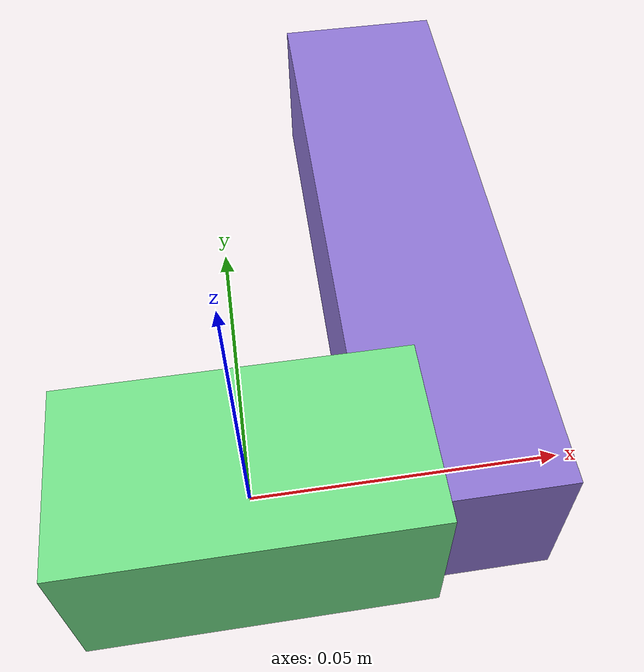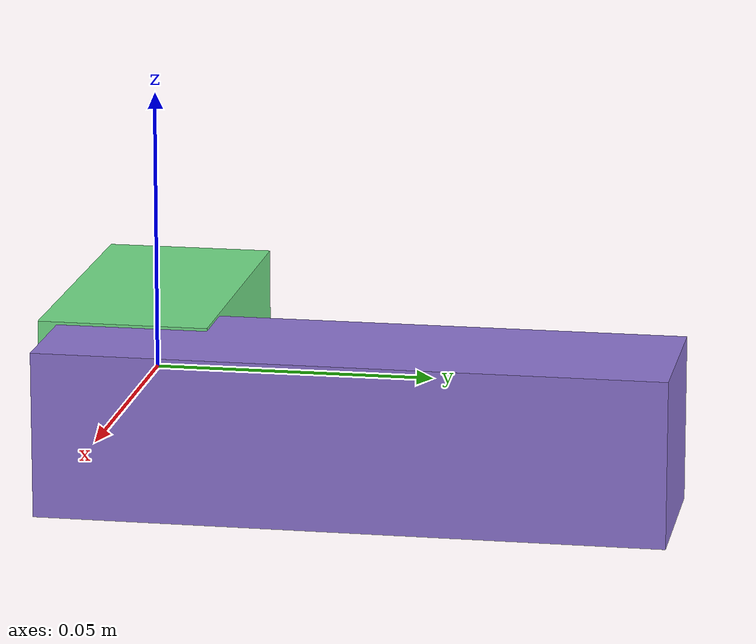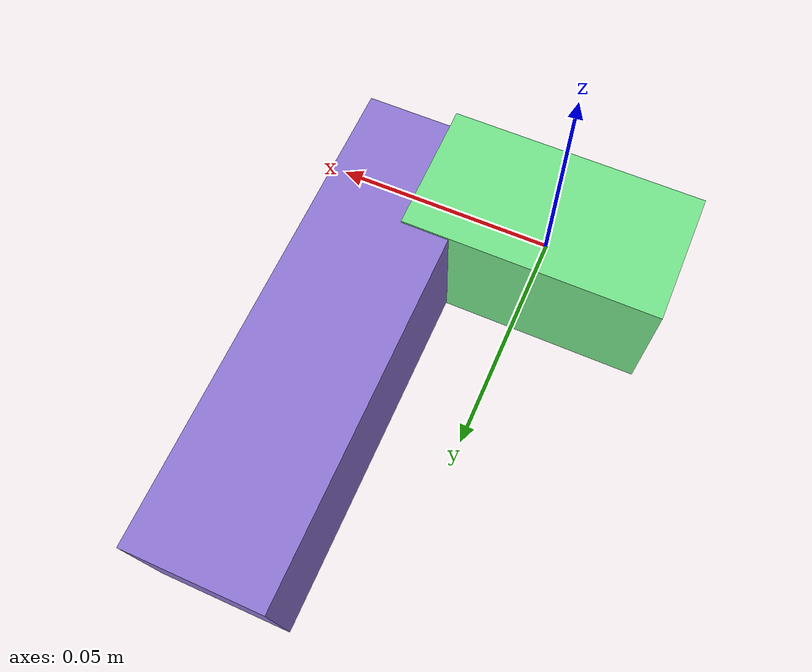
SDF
<sdf version="1.4"><world name="default"><model name="object0"><link name="link1"><pose>0 0 0 0 0 0</pose><inertial><pose>0 0 0 0 0 0</pose><mass>0.030814669496368262</mass><inertia><ixx>4.622200424455239e-06</ixx><ixy>0</ixy><iyy>1.0672977241319466e-05</iyy><ixz>0</ixz><iyz>0</iyz><izz>1.0672977241319466e-05</izz></inertia></inertial><visual name="link1_visual"><pose>0 0  0 0 0 0</pose><geometry><box><size>0.05706420277105234 0.03 0.03</size></box></geometry><material><diffuse>0.453873072824738 0.8889246344141828 0.5419400103442 1</diffuse></material></visual><collision><pose>0 0  0 0 0 0</pose><geometry><box><size>0.05706420277105234 0.03 0.03</size></box></geometry></collision></link><link name="link2"><pose>0.03278660800205992 0.04267678163279245 0 0 0 0</pose><inertial><pose>0 0 0 0 0 0</pose><mass>0.05866516421400252</mass><inertia><ixx>6.181095777533919e-05</ixx><ixy>0</ixy><iyy>8.511337574714866e-06</iyy><ixz>0</ixz><iyz>0</iyz><izz>6.20993948327247e-05</izz></inertia></inertial><visual name="link2_visual"><pose>0 0  0 0 0 0</pose><geometry><box><size>0.03 0.10863919298889356 0.028999999999999998</size></box></geometry><material><diffuse>0.5613620854505783 0.46458936915669635 0.8369562010682436 1</diffuse></material></visual><collision><pose>0 0  0 0 0 0</pose><geometry><box><size>0.03 0.10863919298889356 0.028999999999999998</size></box></geometry></collision></link><joint name="link_joint_0" type="fixed"><parent>link1</parent><child>link2</child><pose>0 0 0 0 0 0</pose><axis><xyz>0 0 1</xyz></axis></joint></model></world></sdf>
